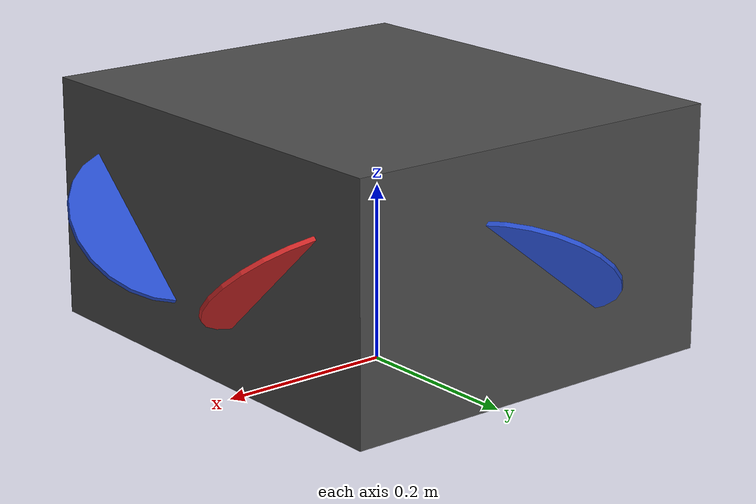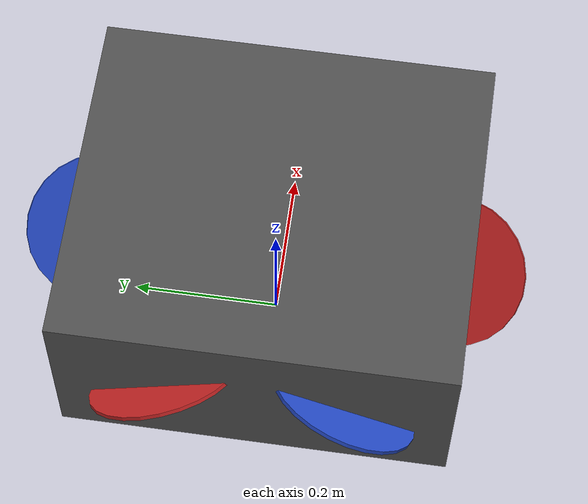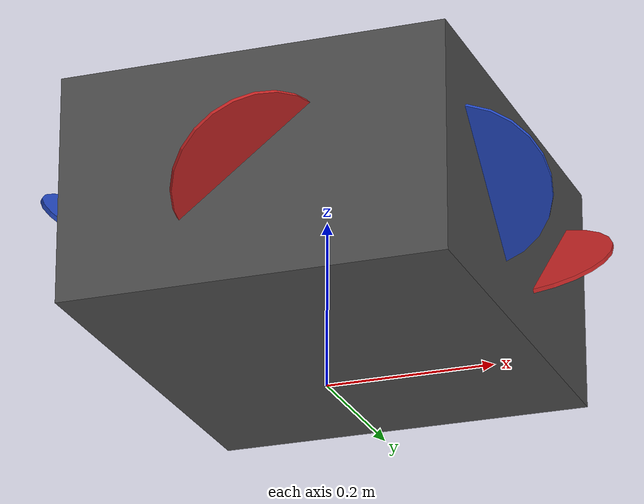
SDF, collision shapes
<?xml version="1.0" encoding="UTF-8"?>
<sdf version='1.9'>
  <model name='fully_actuated_hexa'>
    <pose>0 0 0.16 0 0 0</pose>
    <self_collide>false</self_collide>
    <static>false</static>

    <!-- ==================== base_link ==================== -->
    <link name='base_link'>
      <inertial>
        <pose>0 0 0 0 0 0</pose>
        <mass>2.00544843043012</mass>
        <inertia>
          <ixx>0.02664</ixx>
          <ixy>0</ixy>
          <ixz>0</ixz>
          <iyy>0.02654</iyy>
          <iyz>0</iyz>
          <izz>0.04142</izz>
        </inertia>
      </inertial>
      <visual name='base_visual'>
        <pose>0 0 0 0 0 0</pose>
        <geometry>
          <mesh>
            <scale>1 1 1</scale>
            <uri>model://fully_actuated_hexa/meshes/base_link.STL</uri>
          </mesh>
        </geometry>
        <material>
          <script>
            <name>Gazebo/DarkGrey</name>
            <uri>file://media/materials/scripts/gazebo.material</uri>
          </script>
        </material>
      </visual>
      <collision name='base_collision_box'>
        <pose>0.0042525 0.0000035 0.0106155 0 0 0</pose>
        <geometry>
          <box>
            <size>0.456449 0.523433 0.271963</size>
          </box>
        </geometry>
        <surface>
          <friction>
            <ode>
              <mu>0.8</mu>
              <mu2>0.8</mu2>
            </ode>
          </friction>
          <contact>
            <ode>
              <min_depth>0.001</min_depth>
              <max_vel>0.1</max_vel>
            </ode>
          </contact>
        </surface>
      </collision>
      <gravity>true</gravity>
      <velocity_decay/>
      <self_collide>false</self_collide>

      <sensor name="air_pressure_sensor" type="air_pressure">
        <always_on>1</always_on>
        <update_rate>50</update_rate>
        <air_pressure>
          <pressure>
            <noise type="gaussian">
              <mean>0</mean>
              <stddev>3</stddev>
            </noise>
          </pressure>
        </air_pressure>
      </sensor>
      <sensor name="magnetometer_sensor" type="magnetometer">
        <always_on>1</always_on>
        <update_rate>100</update_rate>
        <magnetometer>
          <x>
            <noise type="gaussian">
              <stddev>0.0001</stddev>
            </noise>
          </x>
          <y>
            <noise type="gaussian">
              <stddev>0.0001</stddev>
            </noise>
          </y>
          <z>
            <noise type="gaussian">
              <stddev>0.0001</stddev>
            </noise>
          </z>
        </magnetometer>
      </sensor>
      <sensor name="imu_sensor" type="imu">
        <always_on>1</always_on>
        <update_rate>250</update_rate>
        <imu>
          <angular_velocity>
            <x>
              <noise type="gaussian">
                <mean>0.0</mean>
                <stddev>0.0008726646</stddev>
              </noise>
            </x>
            <y>
              <noise type="gaussian">
                <mean>0.0</mean>
                <stddev>0.0008726646</stddev>
              </noise>
            </y>
            <z>
              <noise type="gaussian">
                <mean>0.0</mean>
                <stddev>0.0008726646</stddev>
              </noise>
            </z>
          </angular_velocity>
          <linear_acceleration>
            <x>
              <noise type="gaussian">
                <mean>0.0</mean>
                <stddev>0.00637</stddev>
              </noise>
            </x>
            <y>
              <noise type="gaussian">
                <mean>0.0</mean>
                <stddev>0.00637</stddev>
              </noise>
            </y>
            <z>
              <noise type="gaussian">
                <mean>0.0</mean>
                <stddev>0.00686</stddev>
              </noise>
            </z>
          </linear_acceleration>
        </imu>
      </sensor>
      <sensor name="navsat_sensor" type="navsat">
        <always_on>1</always_on>
        <update_rate>30</update_rate>
      </sensor>
    </link>

    <!-- ==================== rotor_0 (Tmotor_Joint_1) ==================== -->
    <link name='rotor_0'>
      <!-- 从URDF joint origin提取：xyz="0.0020626965400404 -0.240280700668414 0.00729557354828894" rpy="0 -0.734085483388813 -0.54297193029543" -->
      <pose>0.0020626965400404 -0.240280700668414 0.00729557354828894 0 -0.734085483388813 -0.54297193029543</pose>
      <inertial>
        <pose>0 0 0 0 0 0</pose>
        <mass>0.005</mass>
        <inertia>
          <ixx>9.75e-07</ixx>
          <ixy>0</ixy>
          <ixz>0</ixz>
          <iyy>0.000273104</iyy>
          <iyz>0</iyz>
          <izz>0.000274004</izz>
        </inertia>
      </inertial>
      <visual name='rotor_visual_0'>
        <pose>0 0 0 0 0 0</pose>
        <geometry>
          <mesh>
            <scale>1 1 1</scale>
            <uri>model://fully_actuated_hexa/meshes/Tmotor_Link_1.STL</uri>
          </mesh>
        </geometry>
        <material>
          <script>
            <name>Gazebo/Red</name>
            <uri>file://media/materials/scripts/gazebo.material</uri>
          </script>
        </material>
      </visual>
      <collision name='rotor_0_collision'>
        <pose>0 0 0 0 0 0</pose>
        <geometry>
          <cylinder>
            <length>0.005</length>
            <radius>0.10</radius>
          </cylinder>
        </geometry>
        <surface>
          <contact>
            <ode>
              <min_depth>0.001</min_depth>
              <max_vel>0</max_vel>
            </ode>
          </contact>
        </surface>
      </collision>
      <gravity>1</gravity>
      <velocity_decay/>
      <self_collide>0</self_collide>
    </link>
    <joint name='rotor_0_joint' type='revolute'>
      <parent>base_link</parent>
      <child>rotor_0</child>
      <axis>
        <xyz expressed_in="__model__">-0.519837 0.422618 0.742404</xyz>
        <limit>
          <lower>-1e+16</lower>
          <upper>1e+16</upper>
        </limit>
      </axis>
    </joint>

    <!-- ==================== rotor_1 (Tmotor_Joint_2) ==================== -->
    <link name='rotor_1'>
      <!-- 从URDF joint origin提取：xyz="0.00206269653963674 0.240280700668922 0.00729557354821227" rpy="0 -0.734085483388817 0.542971930295425" -->
      <pose>0.00206269653963674 0.240280700668922 0.00729557354821227 0 -0.734085483388817 0.542971930295425</pose>
      <inertial>
        <pose>0 0 0 0 0 0</pose>
        <mass>0.005</mass>
        <inertia>
          <ixx>9.75e-07</ixx>
          <ixy>0</ixy>
          <ixz>0</ixz>
          <iyy>0.000273104</iyy>
          <iyz>0</iyz>
          <izz>0.000274004</izz>
        </inertia>
      </inertial>
      <visual name='rotor_visual_1'>
        <pose>0 0 0 0 0 0</pose>
        <geometry>
          <mesh>
            <scale>1 1 1</scale>
            <uri>model://fully_actuated_hexa/meshes/Tmotor_Link_2.STL</uri>
          </mesh>
        </geometry>
        <material>
          <script>
            <name>Gazebo/Blue</name>
            <uri>file://media/materials/scripts/gazebo.material</uri>
          </script>
        </material>
      </visual>
      <collision name='rotor_1_collision'>
        <pose>0 0 0 0 0 0</pose>
        <geometry>
          <cylinder>
            <length>0.005</length>
            <radius>0.10</radius>
          </cylinder>
        </geometry>
        <surface>
          <contact>
            <ode>
              <min_depth>0.001</min_depth>
              <max_vel>0</max_vel>
            </ode>
          </contact>
        </surface>
      </collision>
      <gravity>1</gravity>
      <velocity_decay/>
      <self_collide>0</self_collide>
    </link>
    <joint name='rotor_1_joint' type='revolute'>
      <parent>base_link</parent>
      <child>rotor_1</child>
      <axis>
        <xyz expressed_in="__model__">-0.519837 -0.422618 0.742404</xyz>
        <limit>
          <lower>-1e+16</lower>
          <upper>1e+16</upper>
        </limit>
      </axis>
    </joint>

    <!-- ==================== rotor_2 (Tmotor_Joint_3) ==================== -->
    <link name='rotor_2'>
      <!-- 从URDF joint origin提取：xyz="0.207057842548423 0.121926697938289 0.00729557354839734" rpy="0 -0.73408548338882 1.55142317209776" -->
      <pose>0.207057842548423 0.121926697938289 0.00729557354839734 0 -0.73408548338882 1.55142317209776</pose>
      <inertial>
        <pose>0 0 0 0 0 0</pose>
        <mass>0.005</mass>
        <inertia>
          <ixx>9.75e-07</ixx>
          <ixy>0</ixy>
          <ixz>0</ixz>
          <iyy>0.000273104</iyy>
          <iyz>0</iyz>
          <izz>0.000274004</izz>
        </inertia>
      </inertial>
      <visual name='rotor_visual_2'>
        <pose>0 0 0 0 0 0</pose>
        <geometry>
          <mesh>
            <scale>1 1 1</scale>
            <uri>model://fully_actuated_hexa/meshes/Tmotor_Link_3.STL</uri>
          </mesh>
        </geometry>
        <material>
          <script>
            <name>Gazebo/Red</name>
            <uri>file://media/materials/scripts/gazebo.material</uri>
          </script>
        </material>
      </visual>
      <collision name='rotor_2_collision'>
        <pose>0 0 0 0 0 0</pose>
        <geometry>
          <cylinder>
            <length>0.005</length>
            <radius>0.10</radius>
          </cylinder>
        </geometry>
        <surface>
          <contact>
            <ode>
              <min_depth>0.001</min_depth>
              <max_vel>0</max_vel>
            </ode>
          </contact>
        </surface>
      </collision>
      <gravity>1</gravity>
      <velocity_decay/>
      <self_collide>0</self_collide>
    </link>
    <joint name='rotor_2_joint' type='revolute'>
      <parent>base_link</parent>
      <child>rotor_2</child>
      <axis>
        <xyz expressed_in="__model__">-0.106080 -0.661501 0.742404</xyz>
        <limit>
          <lower>-1e+16</lower>
          <upper>1e+16</upper>
        </limit>
      </axis>
    </joint>

    <!-- ==================== rotor_3 (Tmotor_Joint_4) ==================== -->
    <link name='rotor_3'>
      <!-- 从URDF joint origin提取：xyz="-0.20912053908802 -0.118354002730457 0.00729557354821076" rpy="0 -0.734085483388819 2.63736703268865" -->
      <pose>-0.20912053908802 -0.118354002730457 0.00729557354821076 0 -0.734085483388819 2.63736703268865</pose>
      <inertial>
        <pose>0 0 0 0 0 0</pose>
        <mass>0.005</mass>
        <inertia>
          <ixx>9.75e-07</ixx>
          <ixy>0</ixy>
          <ixz>0</ixz>
          <iyy>0.000273104</iyy>
          <iyz>0</iyz>
          <izz>0.000274004</izz>
        </inertia>
      </inertial>
      <visual name='rotor_visual_3'>
        <pose>0 0 0 0 0 0</pose>
        <geometry>
          <mesh>
            <scale>1 1 1</scale>
            <uri>model://fully_actuated_hexa/meshes/Tmotor_Link_4.STL</uri>
          </mesh>
        </geometry>
        <material>
          <script>
            <name>Gazebo/Blue</name>
            <uri>file://media/materials/scripts/gazebo.material</uri>
          </script>
        </material>
      </visual>
      <collision name='rotor_3_collision'>
        <pose>0 0 0 0 0 0</pose>
        <geometry>
          <cylinder>
            <length>0.005</length>
            <radius>0.10</radius>
          </cylinder>
        </geometry>
        <surface>
          <contact>
            <ode>
              <min_depth>0.001</min_depth>
              <max_vel>0</max_vel>
            </ode>
          </contact>
        </surface>
      </collision>
      <gravity>1</gravity>
      <velocity_decay/>
      <self_collide>0</self_collide>
    </link>
    <joint name='rotor_3_joint' type='revolute'>
      <parent>base_link</parent>
      <child>rotor_3</child>
      <axis>
        <xyz expressed_in="__model__">0.625917 -0.238883 0.742404</xyz>
        <limit>
          <lower>-1e+16</lower>
          <upper>1e+16</upper>
        </limit>
      </axis>
    </joint>

    <!-- ==================== rotor_4 (Tmotor_Joint_5) ==================== -->
    <link name='rotor_4'>
      <!-- 从URDF joint origin提取：xyz="0.207057842548592 -0.121926697938084 0.0072955735482109" rpy="0 -0.734085483388812 -1.55142317209774" -->
      <pose>0.207057842548592 -0.121926697938084 0.0072955735482109 0 -0.734085483388812 -1.55142317209774</pose>
      <inertial>
        <pose>0 0 0 0 0 0</pose>
        <mass>0.005</mass>
        <inertia>
          <ixx>9.75e-07</ixx>
          <ixy>0</ixy>
          <ixz>0</ixz>
          <iyy>0.000273104</iyy>
          <iyz>0</iyz>
          <izz>0.000274004</izz>
        </inertia>
      </inertial>
      <visual name='rotor_visual_4'>
        <pose>0 0 0 0 0 0</pose>
        <geometry>
          <mesh>
            <scale>1 1 1</scale>
            <uri>model://fully_actuated_hexa/meshes/Tmotor_Link_5.STL</uri>
          </mesh>
        </geometry>
        <material>
          <script>
            <name>Gazebo/Blue</name>
            <uri>file://media/materials/scripts/gazebo.material</uri>
          </script>
        </material>
      </visual>
      <collision name='rotor_4_collision'>
        <pose>0 0 0 0 0 0</pose>
        <geometry>
          <cylinder>
            <length>0.005</length>
            <radius>0.10</radius>
          </cylinder>
        </geometry>
        <surface>
          <contact>
            <ode>
              <min_depth>0.001</min_depth>
              <max_vel>0</max_vel>
            </ode>
          </contact>
        </surface>
      </collision>
      <gravity>1</gravity>
      <velocity_decay/>
      <self_collide>0</self_collide>
    </link>
    <joint name='rotor_4_joint' type='revolute'>
      <parent>base_link</parent>
      <child>rotor_4</child>
      <axis>
        <xyz expressed_in="__model__">-0.106080 0.661501 0.742404</xyz>
        <limit>
          <lower>-1e+16</lower>
          <upper>1e+16</upper>
        </limit>
      </axis>
    </joint>

    <!-- ==================== rotor_5 (Tmotor_Joint_6) ==================== -->
    <link name='rotor_5'>
      <!-- 从URDF joint origin提取：xyz="-0.209120539088569 0.118354002730411 0.00729557354867236" rpy="0 -0.734085483388815 -2.63736703268863" -->
      <pose>-0.209120539088569 0.118354002730411 0.00729557354867236 0 -0.734085483388815 -2.63736703268863</pose>
      <inertial>
        <pose>0 0 0 0 0 0</pose>
        <mass>0.005</mass>
        <inertia>
          <ixx>9.75e-07</ixx>
          <ixy>0</ixy>
          <ixz>0</ixz>
          <iyy>0.000273104</iyy>
          <iyz>0</iyz>
          <izz>0.000274004</izz>
        </inertia>
      </inertial>
      <visual name='rotor_visual_5'>
        <pose>0 0 0 0 0 0</pose>
        <geometry>
          <mesh>
            <scale>1 1 1</scale>
            <uri>model://fully_actuated_hexa/meshes/Tmotor_Link_6.STL</uri>
          </mesh>
        </geometry>
        <material>
          <script>
            <name>Gazebo/Red</name>
            <uri>file://media/materials/scripts/gazebo.material</uri>
          </script>
        </material>
      </visual>
      <collision name='rotor_5_collision'>
        <pose>0 0 0 0 0 0</pose>
        <geometry>
          <cylinder>
            <length>0.005</length>
            <radius>0.10</radius>
          </cylinder>
        </geometry>
        <surface>
          <contact>
            <ode>
              <min_depth>0.001</min_depth>
              <max_vel>0</max_vel>
            </ode>
          </contact>
        </surface>
      </collision>
      <gravity>1</gravity>
      <velocity_decay/>
      <self_collide>0</self_collide>
    </link>
    <joint name='rotor_5_joint' type='revolute'>
      <parent>base_link</parent>
      <child>rotor_5</child>
      <axis>
        <xyz expressed_in="__model__">0.625917 0.238883 0.742404</xyz>
        <limit>
          <lower>-1e+16</lower>
          <upper>1e+16</upper>
        </limit>
      </axis>
    </joint>

    <!-- Motor plugins (Gazebo Sim) -->
    <plugin filename="gz-sim-multicopter-motor-model-system" name="gz::sim::systems::MulticopterMotorModel">
      <jointName>rotor_0_joint</jointName>
      <linkName>rotor_0</linkName>
      <turningDirection>cw</turningDirection>
      <timeConstantUp>0.0125</timeConstantUp>
      <timeConstantDown>0.025</timeConstantDown>
      <maxRotVelocity>1600.0</maxRotVelocity>
      <motorConstant>8.54858e-06</motorConstant>
      <momentConstant>0.0245499</momentConstant>
      <commandSubTopic>command/motor_speed</commandSubTopic>
      <motorNumber>0</motorNumber>
      <rotorDragCoefficient>8.06428e-05</rotorDragCoefficient>
      <rollingMomentCoefficient>1e-06</rollingMomentCoefficient>
      <rotorVelocitySlowdownSim>10</rotorVelocitySlowdownSim>
      <motorType>velocity</motorType>
    </plugin>
    <plugin filename="gz-sim-multicopter-motor-model-system" name="gz::sim::systems::MulticopterMotorModel">
      <jointName>rotor_1_joint</jointName>
      <linkName>rotor_1</linkName>
      <turningDirection>ccw</turningDirection>
      <timeConstantUp>0.0125</timeConstantUp>
      <timeConstantDown>0.025</timeConstantDown>
      <maxRotVelocity>1600.0</maxRotVelocity>
      <motorConstant>8.54858e-06</motorConstant>
      <momentConstant>0.0245499</momentConstant>
      <commandSubTopic>command/motor_speed</commandSubTopic>
      <motorNumber>1</motorNumber>
      <rotorDragCoefficient>8.06428e-05</rotorDragCoefficient>
      <rollingMomentCoefficient>1e-06</rollingMomentCoefficient>
      <rotorVelocitySlowdownSim>10</rotorVelocitySlowdownSim>
      <motorType>velocity</motorType>
    </plugin>
    <plugin filename="gz-sim-multicopter-motor-model-system" name="gz::sim::systems::MulticopterMotorModel">
      <jointName>rotor_2_joint</jointName>
      <linkName>rotor_2</linkName>
      <turningDirection>cw</turningDirection>
      <timeConstantUp>0.0125</timeConstantUp>
      <timeConstantDown>0.025</timeConstantDown>
      <maxRotVelocity>1600.0</maxRotVelocity>
      <motorConstant>8.54858e-06</motorConstant>
      <momentConstant>0.0245499</momentConstant>
      <commandSubTopic>command/motor_speed</commandSubTopic>
      <motorNumber>2</motorNumber>
      <rotorDragCoefficient>8.06428e-05</rotorDragCoefficient>
      <rollingMomentCoefficient>1e-06</rollingMomentCoefficient>
      <rotorVelocitySlowdownSim>10</rotorVelocitySlowdownSim>
      <motorType>velocity</motorType>
    </plugin>
    <plugin filename="gz-sim-multicopter-motor-model-system" name="gz::sim::systems::MulticopterMotorModel">
      <jointName>rotor_3_joint</jointName>
      <linkName>rotor_3</linkName>
      <turningDirection>ccw</turningDirection>
      <timeConstantUp>0.0125</timeConstantUp>
      <timeConstantDown>0.025</timeConstantDown>
      <maxRotVelocity>1600.0</maxRotVelocity>
      <motorConstant>8.54858e-06</motorConstant>
      <momentConstant>0.0245499</momentConstant>
      <commandSubTopic>command/motor_speed</commandSubTopic>
      <motorNumber>3</motorNumber>
      <rotorDragCoefficient>8.06428e-05</rotorDragCoefficient>
      <rollingMomentCoefficient>1e-06</rollingMomentCoefficient>
      <rotorVelocitySlowdownSim>10</rotorVelocitySlowdownSim>
      <motorType>velocity</motorType>
    </plugin>
    <plugin filename="gz-sim-multicopter-motor-model-system" name="gz::sim::systems::MulticopterMotorModel">
      <jointName>rotor_4_joint</jointName>
      <linkName>rotor_4</linkName>
      <turningDirection>ccw</turningDirection>
      <timeConstantUp>0.0125</timeConstantUp>
      <timeConstantDown>0.025</timeConstantDown>
      <maxRotVelocity>1600.0</maxRotVelocity>
      <motorConstant>8.54858e-06</motorConstant>
      <momentConstant>0.0245499</momentConstant>
      <commandSubTopic>command/motor_speed</commandSubTopic>
      <motorNumber>4</motorNumber>
      <rotorDragCoefficient>8.06428e-05</rotorDragCoefficient>
      <rollingMomentCoefficient>1e-06</rollingMomentCoefficient>
      <rotorVelocitySlowdownSim>10</rotorVelocitySlowdownSim>
      <motorType>velocity</motorType>
    </plugin>
    <plugin filename="gz-sim-multicopter-motor-model-system" name="gz::sim::systems::MulticopterMotorModel">
      <jointName>rotor_5_joint</jointName>
      <linkName>rotor_5</linkName>
      <turningDirection>cw</turningDirection>
      <timeConstantUp>0.0125</timeConstantUp>
      <timeConstantDown>0.025</timeConstantDown>
      <maxRotVelocity>1600.0</maxRotVelocity>
      <motorConstant>8.54858e-06</motorConstant>
      <momentConstant>0.0245499</momentConstant>
      <commandSubTopic>command/motor_speed</commandSubTopic>
      <motorNumber>5</motorNumber>
      <rotorDragCoefficient>8.06428e-05</rotorDragCoefficient>
      <rollingMomentCoefficient>1e-06</rollingMomentCoefficient>
      <rotorVelocitySlowdownSim>10</rotorVelocitySlowdownSim>
      <motorType>velocity</motorType>
    </plugin>
  </model>
</sdf>
